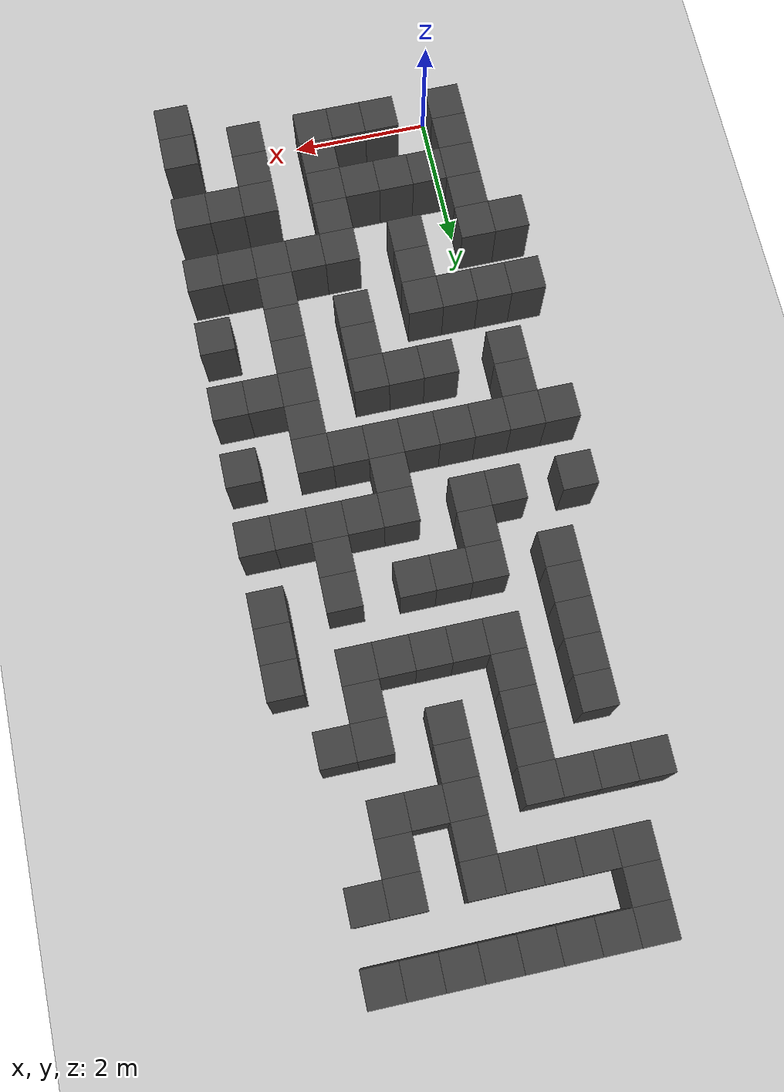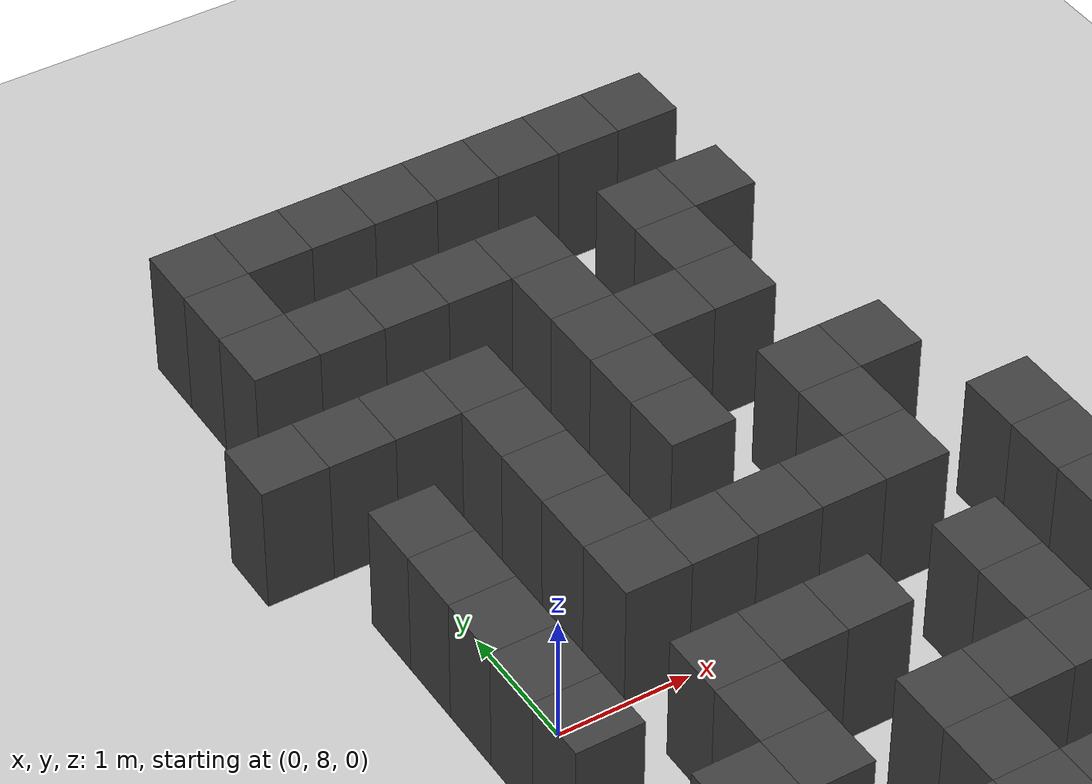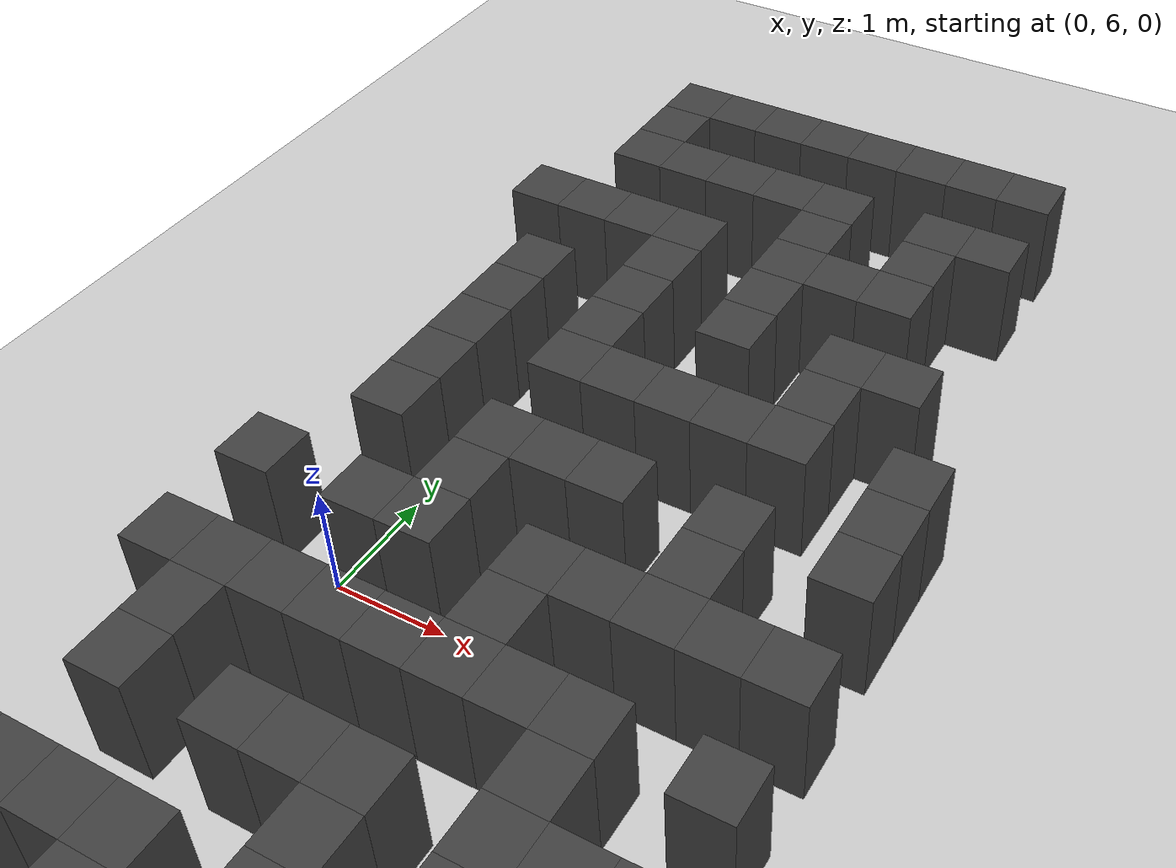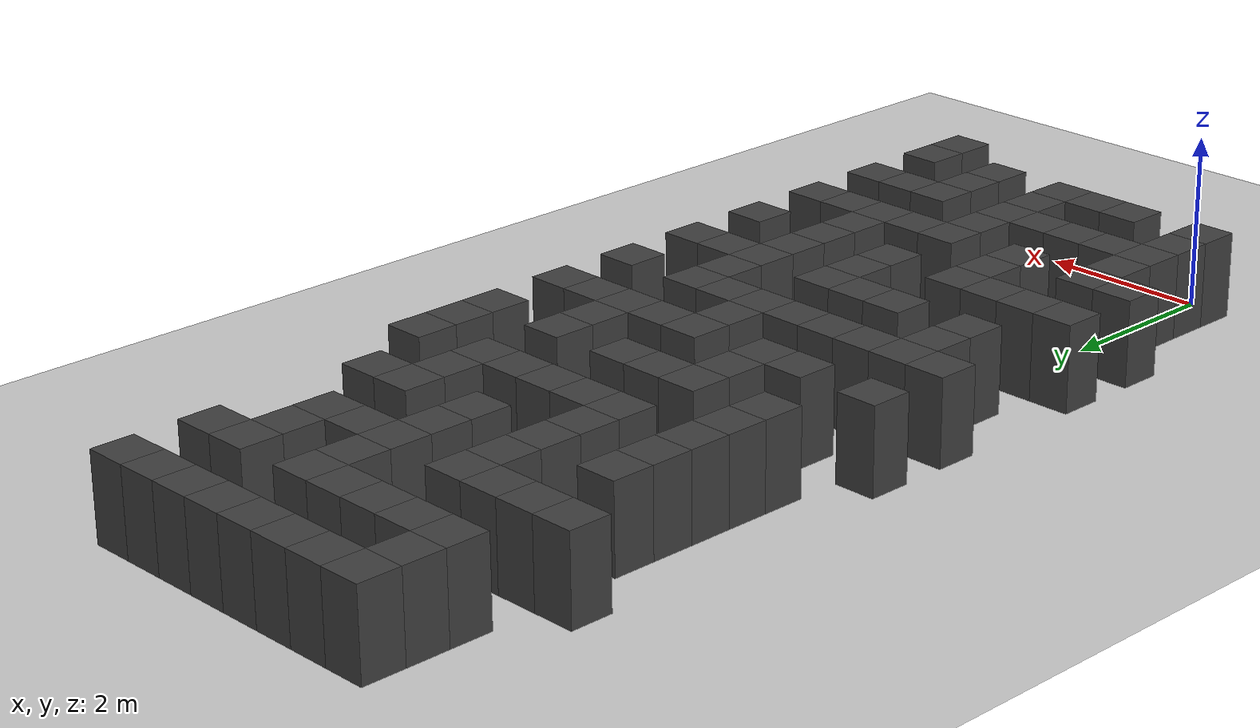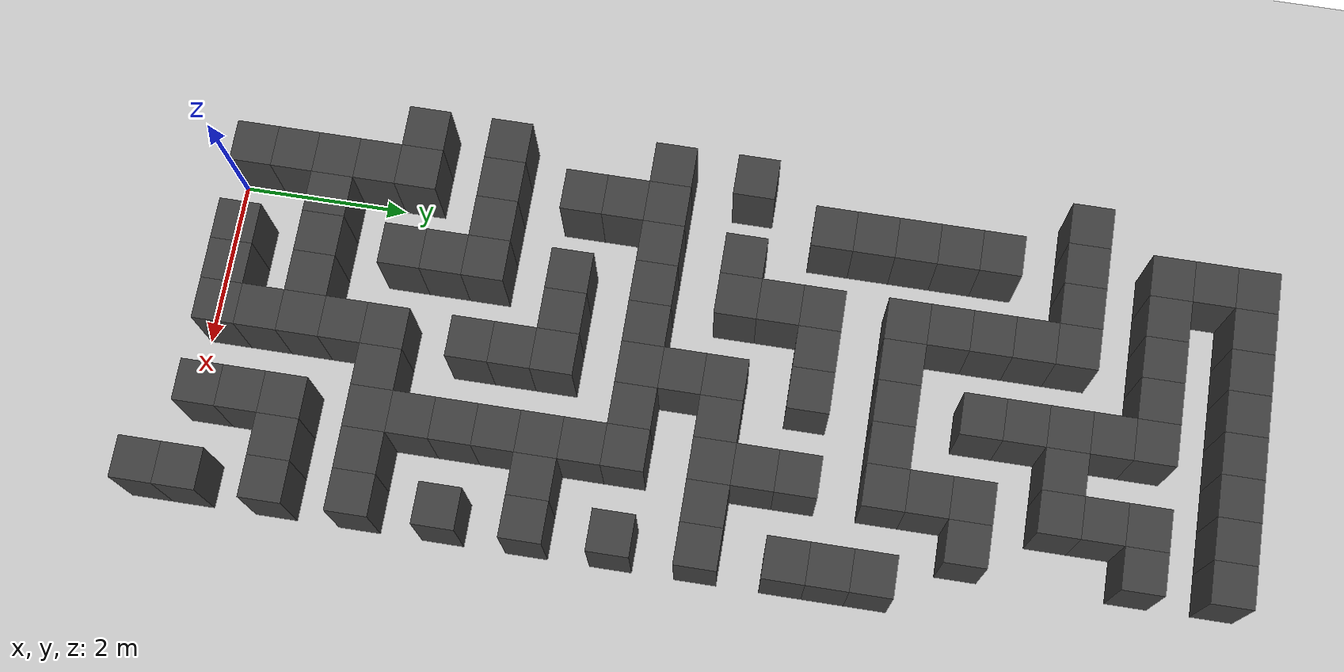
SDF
<sdf version="1.7">
 <world name="map_18228">
  <model name="ground_plane">
   <static>true</static>
   <link name="link">
    <collision name="collision">
     <geometry><plane><normal>0 0 1</normal><size>200 200</size></plane></geometry>
    </collision>
    <visual name="visual">
     <geometry><plane><normal>0 0 1</normal><size>200 200</size></plane></geometry>
     <material><ambient>0.8 0.8 0.8 1</ambient><diffuse>0.8 0.8 0.8 1</diffuse></material>
    </visual>
   </link>
  </model>
  <model name="maze_environment">
   <static>true</static>
   <link name="wall_24">
    <pose>-0.250 12.250 0.500 0 0 0</pose>
    <collision name="col"><geometry><box><size>0.5 0.5 1.0</size></box></geometry></collision>
    <visual name="vis">
     <geometry><box><size>0.5 0.5 1.0</size></box></geometry>
     <material><ambient>0.15 0.15 0.15 1</ambient><diffuse>0.25 0.25 0.25 1</diffuse></material>
    </visual>
   </link>
   <link name="wall_25">
    <pose>0.250 12.250 0.500 0 0 0</pose>
    <collision name="col"><geometry><box><size>0.5 0.5 1.0</size></box></geometry></collision>
    <visual name="vis">
     <geometry><box><size>0.5 0.5 1.0</size></box></geometry>
     <material><ambient>0.15 0.15 0.15 1</ambient><diffuse>0.25 0.25 0.25 1</diffuse></material>
    </visual>
   </link>
   <link name="wall_26">
    <pose>0.750 12.250 0.500 0 0 0</pose>
    <collision name="col"><geometry><box><size>0.5 0.5 1.0</size></box></geometry></collision>
    <visual name="vis">
     <geometry><box><size>0.5 0.5 1.0</size></box></geometry>
     <material><ambient>0.15 0.15 0.15 1</ambient><diffuse>0.25 0.25 0.25 1</diffuse></material>
    </visual>
   </link>
   <link name="wall_27">
    <pose>1.250 12.250 0.500 0 0 0</pose>
    <collision name="col"><geometry><box><size>0.5 0.5 1.0</size></box></geometry></collision>
    <visual name="vis">
     <geometry><box><size>0.5 0.5 1.0</size></box></geometry>
     <material><ambient>0.15 0.15 0.15 1</ambient><diffuse>0.25 0.25 0.25 1</diffuse></material>
    </visual>
   </link>
   <link name="wall_28">
    <pose>1.750 12.250 0.500 0 0 0</pose>
    <collision name="col"><geometry><box><size>0.5 0.5 1.0</size></box></geometry></collision>
    <visual name="vis">
     <geometry><box><size>0.5 0.5 1.0</size></box></geometry>
     <material><ambient>0.15 0.15 0.15 1</ambient><diffuse>0.25 0.25 0.25 1</diffuse></material>
    </visual>
   </link>
   <link name="wall_29">
    <pose>2.250 12.250 0.500 0 0 0</pose>
    <collision name="col"><geometry><box><size>0.5 0.5 1.0</size></box></geometry></collision>
    <visual name="vis">
     <geometry><box><size>0.5 0.5 1.0</size></box></geometry>
     <material><ambient>0.15 0.15 0.15 1</ambient><diffuse>0.25 0.25 0.25 1</diffuse></material>
    </visual>
   </link>
   <link name="wall_30">
    <pose>2.750 12.250 0.500 0 0 0</pose>
    <collision name="col"><geometry><box><size>0.5 0.5 1.0</size></box></geometry></collision>
    <visual name="vis">
     <geometry><box><size>0.5 0.5 1.0</size></box></geometry>
     <material><ambient>0.15 0.15 0.15 1</ambient><diffuse>0.25 0.25 0.25 1</diffuse></material>
    </visual>
   </link>
   <link name="wall_31">
    <pose>3.250 12.250 0.500 0 0 0</pose>
    <collision name="col"><geometry><box><size>0.5 0.5 1.0</size></box></geometry></collision>
    <visual name="vis">
     <geometry><box><size>0.5 0.5 1.0</size></box></geometry>
     <material><ambient>0.15 0.15 0.15 1</ambient><diffuse>0.25 0.25 0.25 1</diffuse></material>
    </visual>
   </link>
   <link name="wall_53">
    <pose>-0.250 11.750 0.500 0 0 0</pose>
    <collision name="col"><geometry><box><size>0.5 0.5 1.0</size></box></geometry></collision>
    <visual name="vis">
     <geometry><box><size>0.5 0.5 1.0</size></box></geometry>
     <material><ambient>0.15 0.15 0.15 1</ambient><diffuse>0.25 0.25 0.25 1</diffuse></material>
    </visual>
   </link>
   <link name="wall_73">
    <pose>-0.250 11.250 0.500 0 0 0</pose>
    <collision name="col"><geometry><box><size>0.5 0.5 1.0</size></box></geometry></collision>
    <visual name="vis">
     <geometry><box><size>0.5 0.5 1.0</size></box></geometry>
     <material><ambient>0.15 0.15 0.15 1</ambient><diffuse>0.25 0.25 0.25 1</diffuse></material>
    </visual>
   </link>
   <link name="wall_74">
    <pose>0.250 11.250 0.500 0 0 0</pose>
    <collision name="col"><geometry><box><size>0.5 0.5 1.0</size></box></geometry></collision>
    <visual name="vis">
     <geometry><box><size>0.5 0.5 1.0</size></box></geometry>
     <material><ambient>0.15 0.15 0.15 1</ambient><diffuse>0.25 0.25 0.25 1</diffuse></material>
    </visual>
   </link>
   <link name="wall_75">
    <pose>0.750 11.250 0.500 0 0 0</pose>
    <collision name="col"><geometry><box><size>0.5 0.5 1.0</size></box></geometry></collision>
    <visual name="vis">
     <geometry><box><size>0.5 0.5 1.0</size></box></geometry>
     <material><ambient>0.15 0.15 0.15 1</ambient><diffuse>0.25 0.25 0.25 1</diffuse></material>
    </visual>
   </link>
   <link name="wall_76">
    <pose>1.250 11.250 0.500 0 0 0</pose>
    <collision name="col"><geometry><box><size>0.5 0.5 1.0</size></box></geometry></collision>
    <visual name="vis">
     <geometry><box><size>0.5 0.5 1.0</size></box></geometry>
     <material><ambient>0.15 0.15 0.15 1</ambient><diffuse>0.25 0.25 0.25 1</diffuse></material>
    </visual>
   </link>
   <link name="wall_77">
    <pose>1.750 11.250 0.500 0 0 0</pose>
    <collision name="col"><geometry><box><size>0.5 0.5 1.0</size></box></geometry></collision>
    <visual name="vis">
     <geometry><box><size>0.5 0.5 1.0</size></box></geometry>
     <material><ambient>0.15 0.15 0.15 1</ambient><diffuse>0.25 0.25 0.25 1</diffuse></material>
    </visual>
   </link>
   <link name="wall_78">
    <pose>2.750 11.250 0.500 0 0 0</pose>
    <collision name="col"><geometry><box><size>0.5 0.5 1.0</size></box></geometry></collision>
    <visual name="vis">
     <geometry><box><size>0.5 0.5 1.0</size></box></geometry>
     <material><ambient>0.15 0.15 0.15 1</ambient><diffuse>0.25 0.25 0.25 1</diffuse></material>
    </visual>
   </link>
   <link name="wall_79">
    <pose>3.250 11.250 0.500 0 0 0</pose>
    <collision name="col"><geometry><box><size>0.5 0.5 1.0</size></box></geometry></collision>
    <visual name="vis">
     <geometry><box><size>0.5 0.5 1.0</size></box></geometry>
     <material><ambient>0.15 0.15 0.15 1</ambient><diffuse>0.25 0.25 0.25 1</diffuse></material>
    </visual>
   </link>
   <link name="wall_101">
    <pose>1.750 10.750 0.500 0 0 0</pose>
    <collision name="col"><geometry><box><size>0.5 0.5 1.0</size></box></geometry></collision>
    <visual name="vis">
     <geometry><box><size>0.5 0.5 1.0</size></box></geometry>
     <material><ambient>0.15 0.15 0.15 1</ambient><diffuse>0.25 0.25 0.25 1</diffuse></material>
    </visual>
   </link>
   <link name="wall_102">
    <pose>2.750 10.750 0.500 0 0 0</pose>
    <collision name="col"><geometry><box><size>0.5 0.5 1.0</size></box></geometry></collision>
    <visual name="vis">
     <geometry><box><size>0.5 0.5 1.0</size></box></geometry>
     <material><ambient>0.15 0.15 0.15 1</ambient><diffuse>0.25 0.25 0.25 1</diffuse></material>
    </visual>
   </link>
   <link name="wall_125">
    <pose>-0.750 10.250 0.500 0 0 0</pose>
    <collision name="col"><geometry><box><size>0.5 0.5 1.0</size></box></geometry></collision>
    <visual name="vis">
     <geometry><box><size>0.5 0.5 1.0</size></box></geometry>
     <material><ambient>0.15 0.15 0.15 1</ambient><diffuse>0.25 0.25 0.25 1</diffuse></material>
    </visual>
   </link>
   <link name="wall_126">
    <pose>-0.250 10.250 0.500 0 0 0</pose>
    <collision name="col"><geometry><box><size>0.5 0.5 1.0</size></box></geometry></collision>
    <visual name="vis">
     <geometry><box><size>0.5 0.5 1.0</size></box></geometry>
     <material><ambient>0.15 0.15 0.15 1</ambient><diffuse>0.25 0.25 0.25 1</diffuse></material>
    </visual>
   </link>
   <link name="wall_127">
    <pose>0.250 10.250 0.500 0 0 0</pose>
    <collision name="col"><geometry><box><size>0.5 0.5 1.0</size></box></geometry></collision>
    <visual name="vis">
     <geometry><box><size>0.5 0.5 1.0</size></box></geometry>
     <material><ambient>0.15 0.15 0.15 1</ambient><diffuse>0.25 0.25 0.25 1</diffuse></material>
    </visual>
   </link>
   <link name="wall_128">
    <pose>0.750 10.250 0.500 0 0 0</pose>
    <collision name="col"><geometry><box><size>0.5 0.5 1.0</size></box></geometry></collision>
    <visual name="vis">
     <geometry><box><size>0.5 0.5 1.0</size></box></geometry>
     <material><ambient>0.15 0.15 0.15 1</ambient><diffuse>0.25 0.25 0.25 1</diffuse></material>
    </visual>
   </link>
   <link name="wall_129">
    <pose>1.750 10.250 0.500 0 0 0</pose>
    <collision name="col"><geometry><box><size>0.5 0.5 1.0</size></box></geometry></collision>
    <visual name="vis">
     <geometry><box><size>0.5 0.5 1.0</size></box></geometry>
     <material><ambient>0.15 0.15 0.15 1</ambient><diffuse>0.25 0.25 0.25 1</diffuse></material>
    </visual>
   </link>
   <link name="wall_130">
    <pose>2.250 10.250 0.500 0 0 0</pose>
    <collision name="col"><geometry><box><size>0.5 0.5 1.0</size></box></geometry></collision>
    <visual name="vis">
     <geometry><box><size>0.5 0.5 1.0</size></box></geometry>
     <material><ambient>0.15 0.15 0.15 1</ambient><diffuse>0.25 0.25 0.25 1</diffuse></material>
    </visual>
   </link>
   <link name="wall_131">
    <pose>2.750 10.250 0.500 0 0 0</pose>
    <collision name="col"><geometry><box><size>0.5 0.5 1.0</size></box></geometry></collision>
    <visual name="vis">
     <geometry><box><size>0.5 0.5 1.0</size></box></geometry>
     <material><ambient>0.15 0.15 0.15 1</ambient><diffuse>0.25 0.25 0.25 1</diffuse></material>
    </visual>
   </link>
   <link name="wall_152">
    <pose>0.750 9.750 0.500 0 0 0</pose>
    <collision name="col"><geometry><box><size>0.5 0.5 1.0</size></box></geometry></collision>
    <visual name="vis">
     <geometry><box><size>0.5 0.5 1.0</size></box></geometry>
     <material><ambient>0.15 0.15 0.15 1</ambient><diffuse>0.25 0.25 0.25 1</diffuse></material>
    </visual>
   </link>
   <link name="wall_153">
    <pose>1.750 9.750 0.500 0 0 0</pose>
    <collision name="col"><geometry><box><size>0.5 0.5 1.0</size></box></geometry></collision>
    <visual name="vis">
     <geometry><box><size>0.5 0.5 1.0</size></box></geometry>
     <material><ambient>0.15 0.15 0.15 1</ambient><diffuse>0.25 0.25 0.25 1</diffuse></material>
    </visual>
   </link>
   <link name="wall_177">
    <pose>-0.250 9.250 0.500 0 0 0</pose>
    <collision name="col"><geometry><box><size>0.5 0.5 1.0</size></box></geometry></collision>
    <visual name="vis">
     <geometry><box><size>0.5 0.5 1.0</size></box></geometry>
     <material><ambient>0.15 0.15 0.15 1</ambient><diffuse>0.25 0.25 0.25 1</diffuse></material>
    </visual>
   </link>
   <link name="wall_178">
    <pose>0.750 9.250 0.500 0 0 0</pose>
    <collision name="col"><geometry><box><size>0.5 0.5 1.0</size></box></geometry></collision>
    <visual name="vis">
     <geometry><box><size>0.5 0.5 1.0</size></box></geometry>
     <material><ambient>0.15 0.15 0.15 1</ambient><diffuse>0.25 0.25 0.25 1</diffuse></material>
    </visual>
   </link>
   <link name="wall_179">
    <pose>1.750 9.250 0.500 0 0 0</pose>
    <collision name="col"><geometry><box><size>0.5 0.5 1.0</size></box></geometry></collision>
    <visual name="vis">
     <geometry><box><size>0.5 0.5 1.0</size></box></geometry>
     <material><ambient>0.15 0.15 0.15 1</ambient><diffuse>0.25 0.25 0.25 1</diffuse></material>
    </visual>
   </link>
   <link name="wall_180">
    <pose>2.750 9.250 0.500 0 0 0</pose>
    <collision name="col"><geometry><box><size>0.5 0.5 1.0</size></box></geometry></collision>
    <visual name="vis">
     <geometry><box><size>0.5 0.5 1.0</size></box></geometry>
     <material><ambient>0.15 0.15 0.15 1</ambient><diffuse>0.25 0.25 0.25 1</diffuse></material>
    </visual>
   </link>
   <link name="wall_181">
    <pose>3.250 9.250 0.500 0 0 0</pose>
    <collision name="col"><geometry><box><size>0.5 0.5 1.0</size></box></geometry></collision>
    <visual name="vis">
     <geometry><box><size>0.5 0.5 1.0</size></box></geometry>
     <material><ambient>0.15 0.15 0.15 1</ambient><diffuse>0.25 0.25 0.25 1</diffuse></material>
    </visual>
   </link>
   <link name="wall_198">
    <pose>-0.250 8.750 0.500 0 0 0</pose>
    <collision name="col"><geometry><box><size>0.5 0.5 1.0</size></box></geometry></collision>
    <visual name="vis">
     <geometry><box><size>0.5 0.5 1.0</size></box></geometry>
     <material><ambient>0.15 0.15 0.15 1</ambient><diffuse>0.25 0.25 0.25 1</diffuse></material>
    </visual>
   </link>
   <link name="wall_199">
    <pose>0.750 8.750 0.500 0 0 0</pose>
    <collision name="col"><geometry><box><size>0.5 0.5 1.0</size></box></geometry></collision>
    <visual name="vis">
     <geometry><box><size>0.5 0.5 1.0</size></box></geometry>
     <material><ambient>0.15 0.15 0.15 1</ambient><diffuse>0.25 0.25 0.25 1</diffuse></material>
    </visual>
   </link>
   <link name="wall_200">
    <pose>2.750 8.750 0.500 0 0 0</pose>
    <collision name="col"><geometry><box><size>0.5 0.5 1.0</size></box></geometry></collision>
    <visual name="vis">
     <geometry><box><size>0.5 0.5 1.0</size></box></geometry>
     <material><ambient>0.15 0.15 0.15 1</ambient><diffuse>0.25 0.25 0.25 1</diffuse></material>
    </visual>
   </link>
   <link name="wall_225">
    <pose>-0.250 8.250 0.500 0 0 0</pose>
    <collision name="col"><geometry><box><size>0.5 0.5 1.0</size></box></geometry></collision>
    <visual name="vis">
     <geometry><box><size>0.5 0.5 1.0</size></box></geometry>
     <material><ambient>0.15 0.15 0.15 1</ambient><diffuse>0.25 0.25 0.25 1</diffuse></material>
    </visual>
   </link>
   <link name="wall_226">
    <pose>0.750 8.250 0.500 0 0 0</pose>
    <collision name="col"><geometry><box><size>0.5 0.5 1.0</size></box></geometry></collision>
    <visual name="vis">
     <geometry><box><size>0.5 0.5 1.0</size></box></geometry>
     <material><ambient>0.15 0.15 0.15 1</ambient><diffuse>0.25 0.25 0.25 1</diffuse></material>
    </visual>
   </link>
   <link name="wall_227">
    <pose>1.250 8.250 0.500 0 0 0</pose>
    <collision name="col"><geometry><box><size>0.5 0.5 1.0</size></box></geometry></collision>
    <visual name="vis">
     <geometry><box><size>0.5 0.5 1.0</size></box></geometry>
     <material><ambient>0.15 0.15 0.15 1</ambient><diffuse>0.25 0.25 0.25 1</diffuse></material>
    </visual>
   </link>
   <link name="wall_228">
    <pose>1.750 8.250 0.500 0 0 0</pose>
    <collision name="col"><geometry><box><size>0.5 0.5 1.0</size></box></geometry></collision>
    <visual name="vis">
     <geometry><box><size>0.5 0.5 1.0</size></box></geometry>
     <material><ambient>0.15 0.15 0.15 1</ambient><diffuse>0.25 0.25 0.25 1</diffuse></material>
    </visual>
   </link>
   <link name="wall_229">
    <pose>2.250 8.250 0.500 0 0 0</pose>
    <collision name="col"><geometry><box><size>0.5 0.5 1.0</size></box></geometry></collision>
    <visual name="vis">
     <geometry><box><size>0.5 0.5 1.0</size></box></geometry>
     <material><ambient>0.15 0.15 0.15 1</ambient><diffuse>0.25 0.25 0.25 1</diffuse></material>
    </visual>
   </link>
   <link name="wall_230">
    <pose>2.750 8.250 0.500 0 0 0</pose>
    <collision name="col"><geometry><box><size>0.5 0.5 1.0</size></box></geometry></collision>
    <visual name="vis">
     <geometry><box><size>0.5 0.5 1.0</size></box></geometry>
     <material><ambient>0.15 0.15 0.15 1</ambient><diffuse>0.25 0.25 0.25 1</diffuse></material>
    </visual>
   </link>
   <link name="wall_231">
    <pose>3.750 8.250 0.500 0 0 0</pose>
    <collision name="col"><geometry><box><size>0.5 0.5 1.0</size></box></geometry></collision>
    <visual name="vis">
     <geometry><box><size>0.5 0.5 1.0</size></box></geometry>
     <material><ambient>0.15 0.15 0.15 1</ambient><diffuse>0.25 0.25 0.25 1</diffuse></material>
    </visual>
   </link>
   <link name="wall_249">
    <pose>-0.250 7.750 0.500 0 0 0</pose>
    <collision name="col"><geometry><box><size>0.5 0.5 1.0</size></box></geometry></collision>
    <visual name="vis">
     <geometry><box><size>0.5 0.5 1.0</size></box></geometry>
     <material><ambient>0.15 0.15 0.15 1</ambient><diffuse>0.25 0.25 0.25 1</diffuse></material>
    </visual>
   </link>
   <link name="wall_250">
    <pose>3.750 7.750 0.500 0 0 0</pose>
    <collision name="col"><geometry><box><size>0.5 0.5 1.0</size></box></geometry></collision>
    <visual name="vis">
     <geometry><box><size>0.5 0.5 1.0</size></box></geometry>
     <material><ambient>0.15 0.15 0.15 1</ambient><diffuse>0.25 0.25 0.25 1</diffuse></material>
    </visual>
   </link>
   <link name="wall_273">
    <pose>-0.250 7.250 0.500 0 0 0</pose>
    <collision name="col"><geometry><box><size>0.5 0.5 1.0</size></box></geometry></collision>
    <visual name="vis">
     <geometry><box><size>0.5 0.5 1.0</size></box></geometry>
     <material><ambient>0.15 0.15 0.15 1</ambient><diffuse>0.25 0.25 0.25 1</diffuse></material>
    </visual>
   </link>
   <link name="wall_274">
    <pose>0.750 7.250 0.500 0 0 0</pose>
    <collision name="col"><geometry><box><size>0.5 0.5 1.0</size></box></geometry></collision>
    <visual name="vis">
     <geometry><box><size>0.5 0.5 1.0</size></box></geometry>
     <material><ambient>0.15 0.15 0.15 1</ambient><diffuse>0.25 0.25 0.25 1</diffuse></material>
    </visual>
   </link>
   <link name="wall_275">
    <pose>1.250 7.250 0.500 0 0 0</pose>
    <collision name="col"><geometry><box><size>0.5 0.5 1.0</size></box></geometry></collision>
    <visual name="vis">
     <geometry><box><size>0.5 0.5 1.0</size></box></geometry>
     <material><ambient>0.15 0.15 0.15 1</ambient><diffuse>0.25 0.25 0.25 1</diffuse></material>
    </visual>
   </link>
   <link name="wall_276">
    <pose>1.750 7.250 0.500 0 0 0</pose>
    <collision name="col"><geometry><box><size>0.5 0.5 1.0</size></box></geometry></collision>
    <visual name="vis">
     <geometry><box><size>0.5 0.5 1.0</size></box></geometry>
     <material><ambient>0.15 0.15 0.15 1</ambient><diffuse>0.25 0.25 0.25 1</diffuse></material>
    </visual>
   </link>
   <link name="wall_277">
    <pose>2.750 7.250 0.500 0 0 0</pose>
    <collision name="col"><geometry><box><size>0.5 0.5 1.0</size></box></geometry></collision>
    <visual name="vis">
     <geometry><box><size>0.5 0.5 1.0</size></box></geometry>
     <material><ambient>0.15 0.15 0.15 1</ambient><diffuse>0.25 0.25 0.25 1</diffuse></material>
    </visual>
   </link>
   <link name="wall_278">
    <pose>3.750 7.250 0.500 0 0 0</pose>
    <collision name="col"><geometry><box><size>0.5 0.5 1.0</size></box></geometry></collision>
    <visual name="vis">
     <geometry><box><size>0.5 0.5 1.0</size></box></geometry>
     <material><ambient>0.15 0.15 0.15 1</ambient><diffuse>0.25 0.25 0.25 1</diffuse></material>
    </visual>
   </link>
   <link name="wall_295">
    <pose>0.750 6.750 0.500 0 0 0</pose>
    <collision name="col"><geometry><box><size>0.5 0.5 1.0</size></box></geometry></collision>
    <visual name="vis">
     <geometry><box><size>0.5 0.5 1.0</size></box></geometry>
     <material><ambient>0.15 0.15 0.15 1</ambient><diffuse>0.25 0.25 0.25 1</diffuse></material>
    </visual>
   </link>
   <link name="wall_296">
    <pose>2.750 6.750 0.500 0 0 0</pose>
    <collision name="col"><geometry><box><size>0.5 0.5 1.0</size></box></geometry></collision>
    <visual name="vis">
     <geometry><box><size>0.5 0.5 1.0</size></box></geometry>
     <material><ambient>0.15 0.15 0.15 1</ambient><diffuse>0.25 0.25 0.25 1</diffuse></material>
    </visual>
   </link>
   <link name="wall_317">
    <pose>-0.750 6.250 0.500 0 0 0</pose>
    <collision name="col"><geometry><box><size>0.5 0.5 1.0</size></box></geometry></collision>
    <visual name="vis">
     <geometry><box><size>0.5 0.5 1.0</size></box></geometry>
     <material><ambient>0.15 0.15 0.15 1</ambient><diffuse>0.25 0.25 0.25 1</diffuse></material>
    </visual>
   </link>
   <link name="wall_318">
    <pose>0.250 6.250 0.500 0 0 0</pose>
    <collision name="col"><geometry><box><size>0.5 0.5 1.0</size></box></geometry></collision>
    <visual name="vis">
     <geometry><box><size>0.5 0.5 1.0</size></box></geometry>
     <material><ambient>0.15 0.15 0.15 1</ambient><diffuse>0.25 0.25 0.25 1</diffuse></material>
    </visual>
   </link>
   <link name="wall_319">
    <pose>0.750 6.250 0.500 0 0 0</pose>
    <collision name="col"><geometry><box><size>0.5 0.5 1.0</size></box></geometry></collision>
    <visual name="vis">
     <geometry><box><size>0.5 0.5 1.0</size></box></geometry>
     <material><ambient>0.15 0.15 0.15 1</ambient><diffuse>0.25 0.25 0.25 1</diffuse></material>
    </visual>
   </link>
   <link name="wall_320">
    <pose>1.750 6.250 0.500 0 0 0</pose>
    <collision name="col"><geometry><box><size>0.5 0.5 1.0</size></box></geometry></collision>
    <visual name="vis">
     <geometry><box><size>0.5 0.5 1.0</size></box></geometry>
     <material><ambient>0.15 0.15 0.15 1</ambient><diffuse>0.25 0.25 0.25 1</diffuse></material>
    </visual>
   </link>
   <link name="wall_321">
    <pose>2.250 6.250 0.500 0 0 0</pose>
    <collision name="col"><geometry><box><size>0.5 0.5 1.0</size></box></geometry></collision>
    <visual name="vis">
     <geometry><box><size>0.5 0.5 1.0</size></box></geometry>
     <material><ambient>0.15 0.15 0.15 1</ambient><diffuse>0.25 0.25 0.25 1</diffuse></material>
    </visual>
   </link>
   <link name="wall_322">
    <pose>2.750 6.250 0.500 0 0 0</pose>
    <collision name="col"><geometry><box><size>0.5 0.5 1.0</size></box></geometry></collision>
    <visual name="vis">
     <geometry><box><size>0.5 0.5 1.0</size></box></geometry>
     <material><ambient>0.15 0.15 0.15 1</ambient><diffuse>0.25 0.25 0.25 1</diffuse></material>
    </visual>
   </link>
   <link name="wall_323">
    <pose>3.250 6.250 0.500 0 0 0</pose>
    <collision name="col"><geometry><box><size>0.5 0.5 1.0</size></box></geometry></collision>
    <visual name="vis">
     <geometry><box><size>0.5 0.5 1.0</size></box></geometry>
     <material><ambient>0.15 0.15 0.15 1</ambient><diffuse>0.25 0.25 0.25 1</diffuse></material>
    </visual>
   </link>
   <link name="wall_324">
    <pose>3.750 6.250 0.500 0 0 0</pose>
    <collision name="col"><geometry><box><size>0.5 0.5 1.0</size></box></geometry></collision>
    <visual name="vis">
     <geometry><box><size>0.5 0.5 1.0</size></box></geometry>
     <material><ambient>0.15 0.15 0.15 1</ambient><diffuse>0.25 0.25 0.25 1</diffuse></material>
    </visual>
   </link>
   <link name="wall_346">
    <pose>1.750 5.750 0.500 0 0 0</pose>
    <collision name="col"><geometry><box><size>0.5 0.5 1.0</size></box></geometry></collision>
    <visual name="vis">
     <geometry><box><size>0.5 0.5 1.0</size></box></geometry>
     <material><ambient>0.15 0.15 0.15 1</ambient><diffuse>0.25 0.25 0.25 1</diffuse></material>
    </visual>
   </link>
   <link name="wall_368">
    <pose>-0.750 5.250 0.500 0 0 0</pose>
    <collision name="col"><geometry><box><size>0.5 0.5 1.0</size></box></geometry></collision>
    <visual name="vis">
     <geometry><box><size>0.5 0.5 1.0</size></box></geometry>
     <material><ambient>0.15 0.15 0.15 1</ambient><diffuse>0.25 0.25 0.25 1</diffuse></material>
    </visual>
   </link>
   <link name="wall_369">
    <pose>-0.250 5.250 0.500 0 0 0</pose>
    <collision name="col"><geometry><box><size>0.5 0.5 1.0</size></box></geometry></collision>
    <visual name="vis">
     <geometry><box><size>0.5 0.5 1.0</size></box></geometry>
     <material><ambient>0.15 0.15 0.15 1</ambient><diffuse>0.25 0.25 0.25 1</diffuse></material>
    </visual>
   </link>
   <link name="wall_370">
    <pose>0.250 5.250 0.500 0 0 0</pose>
    <collision name="col"><geometry><box><size>0.5 0.5 1.0</size></box></geometry></collision>
    <visual name="vis">
     <geometry><box><size>0.5 0.5 1.0</size></box></geometry>
     <material><ambient>0.15 0.15 0.15 1</ambient><diffuse>0.25 0.25 0.25 1</diffuse></material>
    </visual>
   </link>
   <link name="wall_371">
    <pose>0.750 5.250 0.500 0 0 0</pose>
    <collision name="col"><geometry><box><size>0.5 0.5 1.0</size></box></geometry></collision>
    <visual name="vis">
     <geometry><box><size>0.5 0.5 1.0</size></box></geometry>
     <material><ambient>0.15 0.15 0.15 1</ambient><diffuse>0.25 0.25 0.25 1</diffuse></material>
    </visual>
   </link>
   <link name="wall_372">
    <pose>1.250 5.250 0.500 0 0 0</pose>
    <collision name="col"><geometry><box><size>0.5 0.5 1.0</size></box></geometry></collision>
    <visual name="vis">
     <geometry><box><size>0.5 0.5 1.0</size></box></geometry>
     <material><ambient>0.15 0.15 0.15 1</ambient><diffuse>0.25 0.25 0.25 1</diffuse></material>
    </visual>
   </link>
   <link name="wall_373">
    <pose>1.750 5.250 0.500 0 0 0</pose>
    <collision name="col"><geometry><box><size>0.5 0.5 1.0</size></box></geometry></collision>
    <visual name="vis">
     <geometry><box><size>0.5 0.5 1.0</size></box></geometry>
     <material><ambient>0.15 0.15 0.15 1</ambient><diffuse>0.25 0.25 0.25 1</diffuse></material>
    </visual>
   </link>
   <link name="wall_374">
    <pose>2.250 5.250 0.500 0 0 0</pose>
    <collision name="col"><geometry><box><size>0.5 0.5 1.0</size></box></geometry></collision>
    <visual name="vis">
     <geometry><box><size>0.5 0.5 1.0</size></box></geometry>
     <material><ambient>0.15 0.15 0.15 1</ambient><diffuse>0.25 0.25 0.25 1</diffuse></material>
    </visual>
   </link>
   <link name="wall_375">
    <pose>2.750 5.250 0.500 0 0 0</pose>
    <collision name="col"><geometry><box><size>0.5 0.5 1.0</size></box></geometry></collision>
    <visual name="vis">
     <geometry><box><size>0.5 0.5 1.0</size></box></geometry>
     <material><ambient>0.15 0.15 0.15 1</ambient><diffuse>0.25 0.25 0.25 1</diffuse></material>
    </visual>
   </link>
   <link name="wall_376">
    <pose>3.750 5.250 0.500 0 0 0</pose>
    <collision name="col"><geometry><box><size>0.5 0.5 1.0</size></box></geometry></collision>
    <visual name="vis">
     <geometry><box><size>0.5 0.5 1.0</size></box></geometry>
     <material><ambient>0.15 0.15 0.15 1</ambient><diffuse>0.25 0.25 0.25 1</diffuse></material>
    </visual>
   </link>
   <link name="wall_395">
    <pose>-0.250 4.750 0.500 0 0 0</pose>
    <collision name="col"><geometry><box><size>0.5 0.5 1.0</size></box></geometry></collision>
    <visual name="vis">
     <geometry><box><size>0.5 0.5 1.0</size></box></geometry>
     <material><ambient>0.15 0.15 0.15 1</ambient><diffuse>0.25 0.25 0.25 1</diffuse></material>
    </visual>
   </link>
   <link name="wall_396">
    <pose>2.750 4.750 0.500 0 0 0</pose>
    <collision name="col"><geometry><box><size>0.5 0.5 1.0</size></box></geometry></collision>
    <visual name="vis">
     <geometry><box><size>0.5 0.5 1.0</size></box></geometry>
     <material><ambient>0.15 0.15 0.15 1</ambient><diffuse>0.25 0.25 0.25 1</diffuse></material>
    </visual>
   </link>
   <link name="wall_417">
    <pose>-0.250 4.250 0.500 0 0 0</pose>
    <collision name="col"><geometry><box><size>0.5 0.5 1.0</size></box></geometry></collision>
    <visual name="vis">
     <geometry><box><size>0.5 0.5 1.0</size></box></geometry>
     <material><ambient>0.15 0.15 0.15 1</ambient><diffuse>0.25 0.25 0.25 1</diffuse></material>
    </visual>
   </link>
   <link name="wall_418">
    <pose>0.750 4.250 0.500 0 0 0</pose>
    <collision name="col"><geometry><box><size>0.5 0.5 1.0</size></box></geometry></collision>
    <visual name="vis">
     <geometry><box><size>0.5 0.5 1.0</size></box></geometry>
     <material><ambient>0.15 0.15 0.15 1</ambient><diffuse>0.25 0.25 0.25 1</diffuse></material>
    </visual>
   </link>
   <link name="wall_419">
    <pose>1.250 4.250 0.500 0 0 0</pose>
    <collision name="col"><geometry><box><size>0.5 0.5 1.0</size></box></geometry></collision>
    <visual name="vis">
     <geometry><box><size>0.5 0.5 1.0</size></box></geometry>
     <material><ambient>0.15 0.15 0.15 1</ambient><diffuse>0.25 0.25 0.25 1</diffuse></material>
    </visual>
   </link>
   <link name="wall_420">
    <pose>1.750 4.250 0.500 0 0 0</pose>
    <collision name="col"><geometry><box><size>0.5 0.5 1.0</size></box></geometry></collision>
    <visual name="vis">
     <geometry><box><size>0.5 0.5 1.0</size></box></geometry>
     <material><ambient>0.15 0.15 0.15 1</ambient><diffuse>0.25 0.25 0.25 1</diffuse></material>
    </visual>
   </link>
   <link name="wall_421">
    <pose>2.750 4.250 0.500 0 0 0</pose>
    <collision name="col"><geometry><box><size>0.5 0.5 1.0</size></box></geometry></collision>
    <visual name="vis">
     <geometry><box><size>0.5 0.5 1.0</size></box></geometry>
     <material><ambient>0.15 0.15 0.15 1</ambient><diffuse>0.25 0.25 0.25 1</diffuse></material>
    </visual>
   </link>
   <link name="wall_422">
    <pose>3.250 4.250 0.500 0 0 0</pose>
    <collision name="col"><geometry><box><size>0.5 0.5 1.0</size></box></geometry></collision>
    <visual name="vis">
     <geometry><box><size>0.5 0.5 1.0</size></box></geometry>
     <material><ambient>0.15 0.15 0.15 1</ambient><diffuse>0.25 0.25 0.25 1</diffuse></material>
    </visual>
   </link>
   <link name="wall_423">
    <pose>3.750 4.250 0.500 0 0 0</pose>
    <collision name="col"><geometry><box><size>0.5 0.5 1.0</size></box></geometry></collision>
    <visual name="vis">
     <geometry><box><size>0.5 0.5 1.0</size></box></geometry>
     <material><ambient>0.15 0.15 0.15 1</ambient><diffuse>0.25 0.25 0.25 1</diffuse></material>
    </visual>
   </link>
   <link name="wall_441">
    <pose>1.750 3.750 0.500 0 0 0</pose>
    <collision name="col"><geometry><box><size>0.5 0.5 1.0</size></box></geometry></collision>
    <visual name="vis">
     <geometry><box><size>0.5 0.5 1.0</size></box></geometry>
     <material><ambient>0.15 0.15 0.15 1</ambient><diffuse>0.25 0.25 0.25 1</diffuse></material>
    </visual>
   </link>
   <link name="wall_442">
    <pose>2.750 3.750 0.500 0 0 0</pose>
    <collision name="col"><geometry><box><size>0.5 0.5 1.0</size></box></geometry></collision>
    <visual name="vis">
     <geometry><box><size>0.5 0.5 1.0</size></box></geometry>
     <material><ambient>0.15 0.15 0.15 1</ambient><diffuse>0.25 0.25 0.25 1</diffuse></material>
    </visual>
   </link>
   <link name="wall_468">
    <pose>-0.750 3.250 0.500 0 0 0</pose>
    <collision name="col"><geometry><box><size>0.5 0.5 1.0</size></box></geometry></collision>
    <visual name="vis">
     <geometry><box><size>0.5 0.5 1.0</size></box></geometry>
     <material><ambient>0.15 0.15 0.15 1</ambient><diffuse>0.25 0.25 0.25 1</diffuse></material>
    </visual>
   </link>
   <link name="wall_469">
    <pose>-0.250 3.250 0.500 0 0 0</pose>
    <collision name="col"><geometry><box><size>0.5 0.5 1.0</size></box></geometry></collision>
    <visual name="vis">
     <geometry><box><size>0.5 0.5 1.0</size></box></geometry>
     <material><ambient>0.15 0.15 0.15 1</ambient><diffuse>0.25 0.25 0.25 1</diffuse></material>
    </visual>
   </link>
   <link name="wall_470">
    <pose>0.250 3.250 0.500 0 0 0</pose>
    <collision name="col"><geometry><box><size>0.5 0.5 1.0</size></box></geometry></collision>
    <visual name="vis">
     <geometry><box><size>0.5 0.5 1.0</size></box></geometry>
     <material><ambient>0.15 0.15 0.15 1</ambient><diffuse>0.25 0.25 0.25 1</diffuse></material>
    </visual>
   </link>
   <link name="wall_471">
    <pose>0.750 3.250 0.500 0 0 0</pose>
    <collision name="col"><geometry><box><size>0.5 0.5 1.0</size></box></geometry></collision>
    <visual name="vis">
     <geometry><box><size>0.5 0.5 1.0</size></box></geometry>
     <material><ambient>0.15 0.15 0.15 1</ambient><diffuse>0.25 0.25 0.25 1</diffuse></material>
    </visual>
   </link>
   <link name="wall_472">
    <pose>1.750 3.250 0.500 0 0 0</pose>
    <collision name="col"><geometry><box><size>0.5 0.5 1.0</size></box></geometry></collision>
    <visual name="vis">
     <geometry><box><size>0.5 0.5 1.0</size></box></geometry>
     <material><ambient>0.15 0.15 0.15 1</ambient><diffuse>0.25 0.25 0.25 1</diffuse></material>
    </visual>
   </link>
   <link name="wall_473">
    <pose>2.750 3.250 0.500 0 0 0</pose>
    <collision name="col"><geometry><box><size>0.5 0.5 1.0</size></box></geometry></collision>
    <visual name="vis">
     <geometry><box><size>0.5 0.5 1.0</size></box></geometry>
     <material><ambient>0.15 0.15 0.15 1</ambient><diffuse>0.25 0.25 0.25 1</diffuse></material>
    </visual>
   </link>
   <link name="wall_474">
    <pose>3.750 3.250 0.500 0 0 0</pose>
    <collision name="col"><geometry><box><size>0.5 0.5 1.0</size></box></geometry></collision>
    <visual name="vis">
     <geometry><box><size>0.5 0.5 1.0</size></box></geometry>
     <material><ambient>0.15 0.15 0.15 1</ambient><diffuse>0.25 0.25 0.25 1</diffuse></material>
    </visual>
   </link>
   <link name="wall_494">
    <pose>0.750 2.750 0.500 0 0 0</pose>
    <collision name="col"><geometry><box><size>0.5 0.5 1.0</size></box></geometry></collision>
    <visual name="vis">
     <geometry><box><size>0.5 0.5 1.0</size></box></geometry>
     <material><ambient>0.15 0.15 0.15 1</ambient><diffuse>0.25 0.25 0.25 1</diffuse></material>
    </visual>
   </link>
   <link name="wall_495">
    <pose>2.750 2.750 0.500 0 0 0</pose>
    <collision name="col"><geometry><box><size>0.5 0.5 1.0</size></box></geometry></collision>
    <visual name="vis">
     <geometry><box><size>0.5 0.5 1.0</size></box></geometry>
     <material><ambient>0.15 0.15 0.15 1</ambient><diffuse>0.25 0.25 0.25 1</diffuse></material>
    </visual>
   </link>
   <link name="wall_519">
    <pose>-0.750 2.250 0.500 0 0 0</pose>
    <collision name="col"><geometry><box><size>0.5 0.5 1.0</size></box></geometry></collision>
    <visual name="vis">
     <geometry><box><size>0.5 0.5 1.0</size></box></geometry>
     <material><ambient>0.15 0.15 0.15 1</ambient><diffuse>0.25 0.25 0.25 1</diffuse></material>
    </visual>
   </link>
   <link name="wall_520">
    <pose>-0.250 2.250 0.500 0 0 0</pose>
    <collision name="col"><geometry><box><size>0.5 0.5 1.0</size></box></geometry></collision>
    <visual name="vis">
     <geometry><box><size>0.5 0.5 1.0</size></box></geometry>
     <material><ambient>0.15 0.15 0.15 1</ambient><diffuse>0.25 0.25 0.25 1</diffuse></material>
    </visual>
   </link>
   <link name="wall_521">
    <pose>0.750 2.250 0.500 0 0 0</pose>
    <collision name="col"><geometry><box><size>0.5 0.5 1.0</size></box></geometry></collision>
    <visual name="vis">
     <geometry><box><size>0.5 0.5 1.0</size></box></geometry>
     <material><ambient>0.15 0.15 0.15 1</ambient><diffuse>0.25 0.25 0.25 1</diffuse></material>
    </visual>
   </link>
   <link name="wall_522">
    <pose>1.750 2.250 0.500 0 0 0</pose>
    <collision name="col"><geometry><box><size>0.5 0.5 1.0</size></box></geometry></collision>
    <visual name="vis">
     <geometry><box><size>0.5 0.5 1.0</size></box></geometry>
     <material><ambient>0.15 0.15 0.15 1</ambient><diffuse>0.25 0.25 0.25 1</diffuse></material>
    </visual>
   </link>
   <link name="wall_523">
    <pose>2.250 2.250 0.500 0 0 0</pose>
    <collision name="col"><geometry><box><size>0.5 0.5 1.0</size></box></geometry></collision>
    <visual name="vis">
     <geometry><box><size>0.5 0.5 1.0</size></box></geometry>
     <material><ambient>0.15 0.15 0.15 1</ambient><diffuse>0.25 0.25 0.25 1</diffuse></material>
    </visual>
   </link>
   <link name="wall_524">
    <pose>2.750 2.250 0.500 0 0 0</pose>
    <collision name="col"><geometry><box><size>0.5 0.5 1.0</size></box></geometry></collision>
    <visual name="vis">
     <geometry><box><size>0.5 0.5 1.0</size></box></geometry>
     <material><ambient>0.15 0.15 0.15 1</ambient><diffuse>0.25 0.25 0.25 1</diffuse></material>
    </visual>
   </link>
   <link name="wall_525">
    <pose>3.250 2.250 0.500 0 0 0</pose>
    <collision name="col"><geometry><box><size>0.5 0.5 1.0</size></box></geometry></collision>
    <visual name="vis">
     <geometry><box><size>0.5 0.5 1.0</size></box></geometry>
     <material><ambient>0.15 0.15 0.15 1</ambient><diffuse>0.25 0.25 0.25 1</diffuse></material>
    </visual>
   </link>
   <link name="wall_526">
    <pose>3.750 2.250 0.500 0 0 0</pose>
    <collision name="col"><geometry><box><size>0.5 0.5 1.0</size></box></geometry></collision>
    <visual name="vis">
     <geometry><box><size>0.5 0.5 1.0</size></box></geometry>
     <material><ambient>0.15 0.15 0.15 1</ambient><diffuse>0.25 0.25 0.25 1</diffuse></material>
    </visual>
   </link>
   <link name="wall_545">
    <pose>-0.250 1.750 0.500 0 0 0</pose>
    <collision name="col"><geometry><box><size>0.5 0.5 1.0</size></box></geometry></collision>
    <visual name="vis">
     <geometry><box><size>0.5 0.5 1.0</size></box></geometry>
     <material><ambient>0.15 0.15 0.15 1</ambient><diffuse>0.25 0.25 0.25 1</diffuse></material>
    </visual>
   </link>
   <link name="wall_546">
    <pose>1.750 1.750 0.500 0 0 0</pose>
    <collision name="col"><geometry><box><size>0.5 0.5 1.0</size></box></geometry></collision>
    <visual name="vis">
     <geometry><box><size>0.5 0.5 1.0</size></box></geometry>
     <material><ambient>0.15 0.15 0.15 1</ambient><diffuse>0.25 0.25 0.25 1</diffuse></material>
    </visual>
   </link>
   <link name="wall_564">
    <pose>-0.250 1.250 0.500 0 0 0</pose>
    <collision name="col"><geometry><box><size>0.5 0.5 1.0</size></box></geometry></collision>
    <visual name="vis">
     <geometry><box><size>0.5 0.5 1.0</size></box></geometry>
     <material><ambient>0.15 0.15 0.15 1</ambient><diffuse>0.25 0.25 0.25 1</diffuse></material>
    </visual>
   </link>
   <link name="wall_565">
    <pose>0.250 1.250 0.500 0 0 0</pose>
    <collision name="col"><geometry><box><size>0.5 0.5 1.0</size></box></geometry></collision>
    <visual name="vis">
     <geometry><box><size>0.5 0.5 1.0</size></box></geometry>
     <material><ambient>0.15 0.15 0.15 1</ambient><diffuse>0.25 0.25 0.25 1</diffuse></material>
    </visual>
   </link>
   <link name="wall_566">
    <pose>0.750 1.250 0.500 0 0 0</pose>
    <collision name="col"><geometry><box><size>0.5 0.5 1.0</size></box></geometry></collision>
    <visual name="vis">
     <geometry><box><size>0.5 0.5 1.0</size></box></geometry>
     <material><ambient>0.15 0.15 0.15 1</ambient><diffuse>0.25 0.25 0.25 1</diffuse></material>
    </visual>
   </link>
   <link name="wall_567">
    <pose>1.250 1.250 0.500 0 0 0</pose>
    <collision name="col"><geometry><box><size>0.5 0.5 1.0</size></box></geometry></collision>
    <visual name="vis">
     <geometry><box><size>0.5 0.5 1.0</size></box></geometry>
     <material><ambient>0.15 0.15 0.15 1</ambient><diffuse>0.25 0.25 0.25 1</diffuse></material>
    </visual>
   </link>
   <link name="wall_568">
    <pose>1.750 1.250 0.500 0 0 0</pose>
    <collision name="col"><geometry><box><size>0.5 0.5 1.0</size></box></geometry></collision>
    <visual name="vis">
     <geometry><box><size>0.5 0.5 1.0</size></box></geometry>
     <material><ambient>0.15 0.15 0.15 1</ambient><diffuse>0.25 0.25 0.25 1</diffuse></material>
    </visual>
   </link>
   <link name="wall_569">
    <pose>2.750 1.250 0.500 0 0 0</pose>
    <collision name="col"><geometry><box><size>0.5 0.5 1.0</size></box></geometry></collision>
    <visual name="vis">
     <geometry><box><size>0.5 0.5 1.0</size></box></geometry>
     <material><ambient>0.15 0.15 0.15 1</ambient><diffuse>0.25 0.25 0.25 1</diffuse></material>
    </visual>
   </link>
   <link name="wall_570">
    <pose>3.250 1.250 0.500 0 0 0</pose>
    <collision name="col"><geometry><box><size>0.5 0.5 1.0</size></box></geometry></collision>
    <visual name="vis">
     <geometry><box><size>0.5 0.5 1.0</size></box></geometry>
     <material><ambient>0.15 0.15 0.15 1</ambient><diffuse>0.25 0.25 0.25 1</diffuse></material>
    </visual>
   </link>
   <link name="wall_571">
    <pose>3.750 1.250 0.500 0 0 0</pose>
    <collision name="col"><geometry><box><size>0.5 0.5 1.0</size></box></geometry></collision>
    <visual name="vis">
     <geometry><box><size>0.5 0.5 1.0</size></box></geometry>
     <material><ambient>0.15 0.15 0.15 1</ambient><diffuse>0.25 0.25 0.25 1</diffuse></material>
    </visual>
   </link>
   <link name="wall_595">
    <pose>-0.250 0.750 0.500 0 0 0</pose>
    <collision name="col"><geometry><box><size>0.5 0.5 1.0</size></box></geometry></collision>
    <visual name="vis">
     <geometry><box><size>0.5 0.5 1.0</size></box></geometry>
     <material><ambient>0.15 0.15 0.15 1</ambient><diffuse>0.25 0.25 0.25 1</diffuse></material>
    </visual>
   </link>
   <link name="wall_596">
    <pose>1.750 0.750 0.500 0 0 0</pose>
    <collision name="col"><geometry><box><size>0.5 0.5 1.0</size></box></geometry></collision>
    <visual name="vis">
     <geometry><box><size>0.5 0.5 1.0</size></box></geometry>
     <material><ambient>0.15 0.15 0.15 1</ambient><diffuse>0.25 0.25 0.25 1</diffuse></material>
    </visual>
   </link>
   <link name="wall_597">
    <pose>2.750 0.750 0.500 0 0 0</pose>
    <collision name="col"><geometry><box><size>0.5 0.5 1.0</size></box></geometry></collision>
    <visual name="vis">
     <geometry><box><size>0.5 0.5 1.0</size></box></geometry>
     <material><ambient>0.15 0.15 0.15 1</ambient><diffuse>0.25 0.25 0.25 1</diffuse></material>
    </visual>
   </link>
   <link name="wall_618">
    <pose>-0.250 0.250 0.500 0 0 0</pose>
    <collision name="col"><geometry><box><size>0.5 0.5 1.0</size></box></geometry></collision>
    <visual name="vis">
     <geometry><box><size>0.5 0.5 1.0</size></box></geometry>
     <material><ambient>0.15 0.15 0.15 1</ambient><diffuse>0.25 0.25 0.25 1</diffuse></material>
    </visual>
   </link>
   <link name="wall_619">
    <pose>0.750 0.250 0.500 0 0 0</pose>
    <collision name="col"><geometry><box><size>0.5 0.5 1.0</size></box></geometry></collision>
    <visual name="vis">
     <geometry><box><size>0.5 0.5 1.0</size></box></geometry>
     <material><ambient>0.15 0.15 0.15 1</ambient><diffuse>0.25 0.25 0.25 1</diffuse></material>
    </visual>
   </link>
   <link name="wall_620">
    <pose>1.250 0.250 0.500 0 0 0</pose>
    <collision name="col"><geometry><box><size>0.5 0.5 1.0</size></box></geometry></collision>
    <visual name="vis">
     <geometry><box><size>0.5 0.5 1.0</size></box></geometry>
     <material><ambient>0.15 0.15 0.15 1</ambient><diffuse>0.25 0.25 0.25 1</diffuse></material>
    </visual>
   </link>
   <link name="wall_621">
    <pose>1.750 0.250 0.500 0 0 0</pose>
    <collision name="col"><geometry><box><size>0.5 0.5 1.0</size></box></geometry></collision>
    <visual name="vis">
     <geometry><box><size>0.5 0.5 1.0</size></box></geometry>
     <material><ambient>0.15 0.15 0.15 1</ambient><diffuse>0.25 0.25 0.25 1</diffuse></material>
    </visual>
   </link>
   <link name="wall_622">
    <pose>2.750 0.250 0.500 0 0 0</pose>
    <collision name="col"><geometry><box><size>0.5 0.5 1.0</size></box></geometry></collision>
    <visual name="vis">
     <geometry><box><size>0.5 0.5 1.0</size></box></geometry>
     <material><ambient>0.15 0.15 0.15 1</ambient><diffuse>0.25 0.25 0.25 1</diffuse></material>
    </visual>
   </link>
   <link name="wall_623">
    <pose>3.750 0.250 0.500 0 0 0</pose>
    <collision name="col"><geometry><box><size>0.5 0.5 1.0</size></box></geometry></collision>
    <visual name="vis">
     <geometry><box><size>0.5 0.5 1.0</size></box></geometry>
     <material><ambient>0.15 0.15 0.15 1</ambient><diffuse>0.25 0.25 0.25 1</diffuse></material>
    </visual>
   </link>
   <link name="wall_646">
    <pose>3.750 -0.250 0.500 0 0 0</pose>
    <collision name="col"><geometry><box><size>0.5 0.5 1.0</size></box></geometry></collision>
    <visual name="vis">
     <geometry><box><size>0.5 0.5 1.0</size></box></geometry>
     <material><ambient>0.15 0.15 0.15 1</ambient><diffuse>0.25 0.25 0.25 1</diffuse></material>
    </visual>
   </link>
  </model>
 </world>
</sdf>
